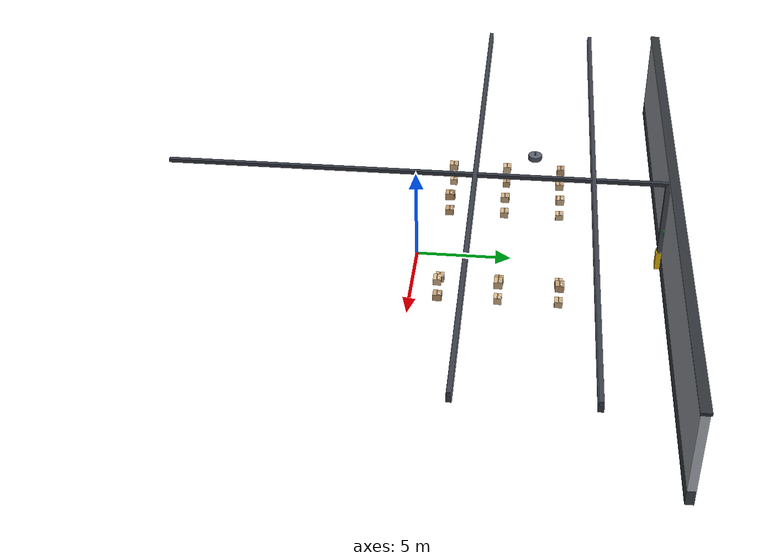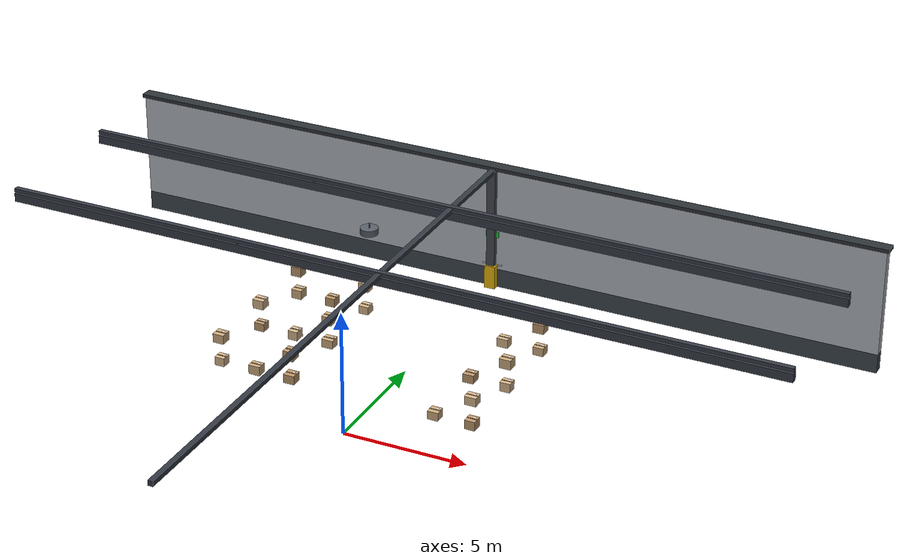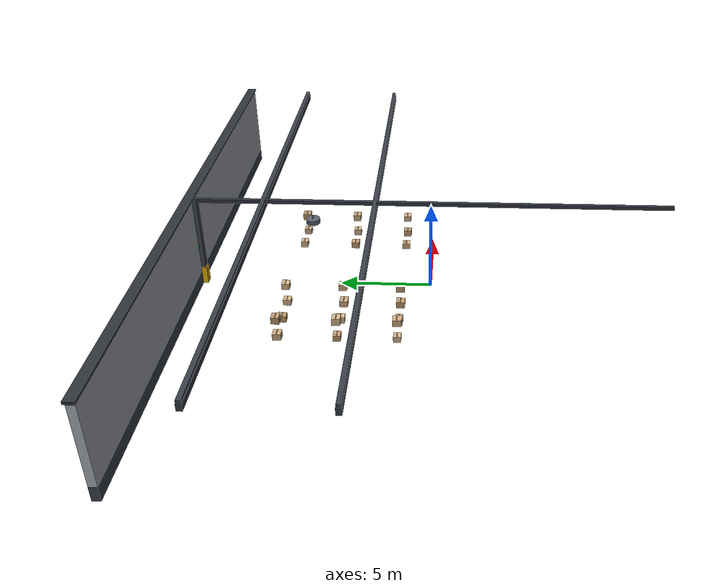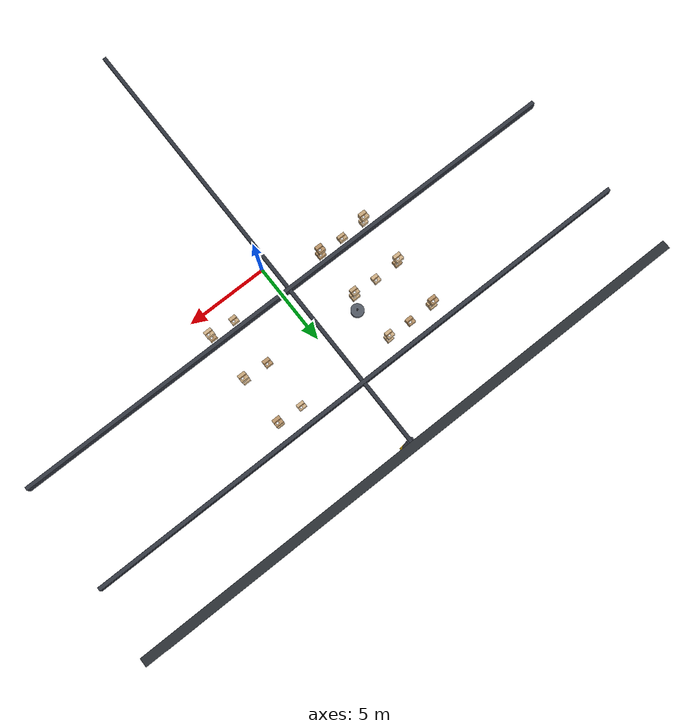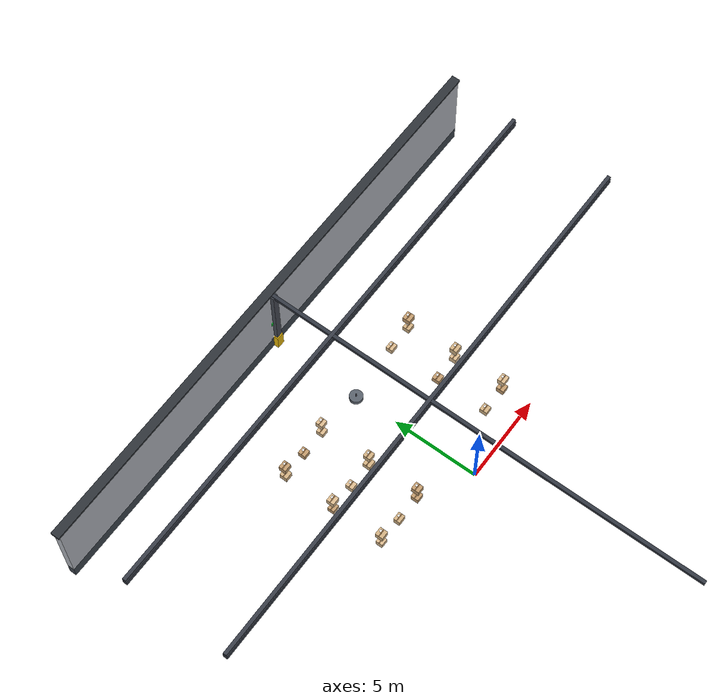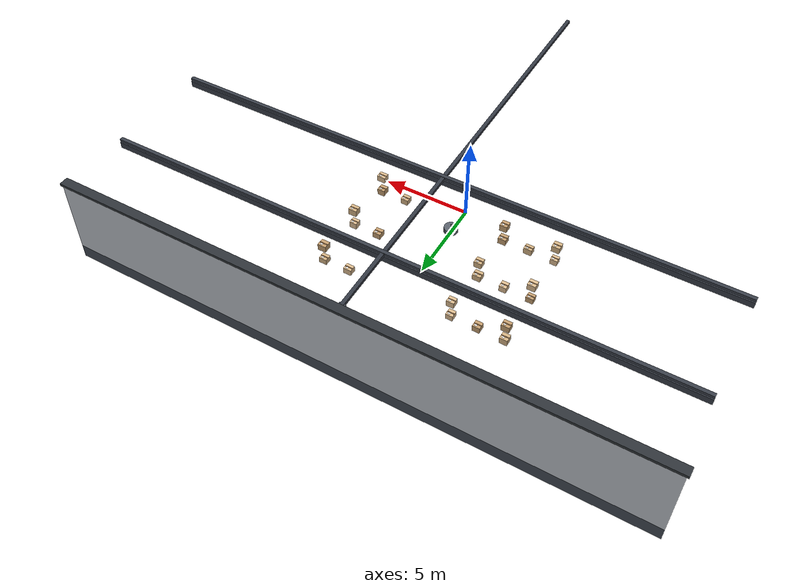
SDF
<sdf version="1.8">
 <world name="warehouse_3d">
  <model name="warehouse_architecture">
   <static>true</static>
   <link name="wall_north_base">
    <pose>0.0000 13.0000 0.4000 0.0000 0.0000 0.0000</pose>
    <collision name="wall_north_base_col">
     <geometry><box><size>32.4000 0.4000 0.8000</size></box></geometry>
    </collision>
    <visual name="wall_north_base_vis">
     <geometry><box><size>32.4000 0.4000 0.8000</size></box></geometry>
     <material>
      <ambient>0.163 0.182 0.208 1.00</ambient>
      <diffuse>0.250 0.280 0.320 1.00</diffuse>
      <specular>0.15 0.15 0.15 1.0</specular>
     </material>
    </visual>
   </link>
   <link name="wall_north_upper">
    <pose>0.0000 13.0000 3.0000 0.0000 0.0000 0.0000</pose>
    <collision name="wall_north_upper_col">
     <geometry><box><size>32.4000 0.4000 4.4000</size></box></geometry>
    </collision>
    <visual name="wall_north_upper_vis">
     <geometry><box><size>32.4000 0.4000 4.4000</size></box></geometry>
     <material>
      <ambient>0.468 0.481 0.501 1.00</ambient>
      <diffuse>0.720 0.740 0.770 1.00</diffuse>
      <specular>0.15 0.15 0.15 1.0</specular>
     </material>
    </visual>
   </link>
   <link name="wall_north_coping">
    <pose>0.0000 13.0000 5.2500 0.0000 0.0000 0.0000</pose>
    <collision name="wall_north_coping_col">
     <geometry><box><size>32.6000 0.5000 0.1500</size></box></geometry>
    </collision>
    <visual name="wall_north_coping_vis">
     <geometry><box><size>32.6000 0.5000 0.1500</size></box></geometry>
     <material>
      <ambient>0.117 0.130 0.143 1.00</ambient>
      <diffuse>0.180 0.200 0.220 1.00</diffuse>
      <specular>0.15 0.15 0.15 1.0</specular>
     </material>
    </visual>
   </link>
   <link name="window_north">
    <pose>0.0000 12.8500 4.2000 0.0000 0.0000 0.0000</pose>
    <visual name="window_north_vis">
     <geometry><box><size>28.0000 0.0500 1.0000</size></box></geometry>
     <material>
      <ambient>0.293 0.423 0.552 0.70</ambient>
      <diffuse>0.450 0.650 0.850 0.70</diffuse>
      <specular>0.15 0.15 0.15 1.0</specular>
     </material>
    </visual>
   </link>
   <link name="exit_door_north">
    <pose>0.0000 12.8500 1.1000 0.0000 0.0000 0.0000</pose>
    <collision name="exit_door_north_col">
     <geometry><box><size>1.1000 0.0500 2.2000</size></box></geometry>
    </collision>
    <visual name="exit_door_north_vis">
     <geometry><box><size>1.1000 0.0500 2.2000</size></box></geometry>
     <material>
      <ambient>0.195 0.208 0.227 1.00</ambient>
      <diffuse>0.300 0.320 0.350 1.00</diffuse>
      <specular>0.15 0.15 0.15 1.0</specular>
     </material>
    </visual>
   </link>
   <link name="exit_pushbar_north">
    <pose>0.0000 12.8000 1.0000 0.0000 0.0000 0.0000</pose>
    <collision name="exit_pushbar_north_col">
     <geometry><box><size>0.8500 0.0600 0.0600</size></box></geometry>
    </collision>
    <visual name="exit_pushbar_north_vis">
     <geometry><box><size>0.8500 0.0600 0.0600</size></box></geometry>
     <material>
      <ambient>0.520 0.520 0.552 1.00</ambient>
      <diffuse>0.800 0.800 0.850 1.00</diffuse>
      <specular>0.15 0.15 0.15 1.0</specular>
     </material>
    </visual>
   </link>
   <link name="exit_sign_north">
    <pose>0.0000 12.8000 2.3500 0.0000 0.0000 0.0000</pose>
    <visual name="exit_sign_north_vis">
     <geometry><box><size>0.5500 0.0800 0.2500</size></box></geometry>
     <material>
      <ambient>0.065 0.552 0.163 1.00</ambient>
      <diffuse>0.100 0.850 0.250 1.00</diffuse>
      <specular>0.15 0.15 0.15 1.0</specular>
      <emissive>0.100 0.800 0.200 1.0</emissive>
     </material>
    </visual>
   </link>
   <link name="col_10_base">
    <pose>0.0000 12.7500 0.5000 0.0000 0.0000 0.0000</pose>
    <collision name="col_10_base_col">
     <geometry><box><size>0.4500 0.4500 1.0000</size></box></geometry>
    </collision>
    <visual name="col_10_base_vis">
     <geometry><box><size>0.4500 0.4500 1.0000</size></box></geometry>
     <material>
      <ambient>0.617 0.488 0.033 1.00</ambient>
      <diffuse>0.950 0.750 0.050 1.00</diffuse>
      <specular>0.15 0.15 0.15 1.0</specular>
     </material>
    </visual>
   </link>
   <link name="col_10_stem">
    <pose>0.0000 12.7500 3.1000 0.0000 0.0000 0.0000</pose>
    <collision name="col_10_stem_col">
     <geometry><box><size>0.3500 0.3500 4.2000</size></box></geometry>
    </collision>
    <visual name="col_10_stem_vis">
     <geometry><box><size>0.3500 0.3500 4.2000</size></box></geometry>
     <material>
      <ambient>0.182 0.195 0.221 1.00</ambient>
      <diffuse>0.280 0.300 0.340 1.00</diffuse>
      <specular>0.15 0.15 0.15 1.0</specular>
     </material>
    </visual>
   </link>
   <link name="truss_beam_2">
    <pose>0.0000 3.0000 4.9000 0.0000 0.0000 0.0000</pose>
    <visual name="truss_beam_2_vis">
     <geometry><box><size>32.0000 0.2500 0.3500</size></box></geometry>
     <material>
      <ambient>0.143 0.156 0.182 1.00</ambient>
      <diffuse>0.220 0.240 0.280 1.00</diffuse>
      <specular>0.15 0.15 0.15 1.0</specular>
     </material>
    </visual>
   </link>
   <link name="truss_top_2">
    <pose>0.0000 3.0000 5.2000 0.0000 0.0000 0.0000</pose>
    <visual name="truss_top_2_vis">
     <geometry><box><size>32.0000 0.2000 0.1500</size></box></geometry>
     <material>
      <ambient>0.143 0.156 0.182 1.00</ambient>
      <diffuse>0.220 0.240 0.280 1.00</diffuse>
      <specular>0.15 0.15 0.15 1.0</specular>
     </material>
    </visual>
   </link>
   <link name="truss_web_2_1">
    <pose>-6.0000 3.0000 5.0500 0.0000 0.0000 0.0000</pose>
    <visual name="truss_web_2_1_vis">
     <geometry><box><size>0.1200 0.1200 0.3000</size></box></geometry>
     <material>
      <ambient>0.182 0.195 0.221 1.00</ambient>
      <diffuse>0.280 0.300 0.340 1.00</diffuse>
      <specular>0.15 0.15 0.15 1.0</specular>
     </material>
    </visual>
   </link>
   <link name="truss_web_2_2">
    <pose>0.0000 3.0000 5.0500 0.0000 0.0000 0.0000</pose>
    <visual name="truss_web_2_2_vis">
     <geometry><box><size>0.1200 0.1200 0.3000</size></box></geometry>
     <material>
      <ambient>0.182 0.195 0.221 1.00</ambient>
      <diffuse>0.280 0.300 0.340 1.00</diffuse>
      <specular>0.15 0.15 0.15 1.0</specular>
     </material>
    </visual>
   </link>
   <link name="truss_beam_3">
    <pose>0.0000 9.0000 4.9000 0.0000 0.0000 0.0000</pose>
    <visual name="truss_beam_3_vis">
     <geometry><box><size>32.0000 0.2500 0.3500</size></box></geometry>
     <material>
      <ambient>0.143 0.156 0.182 1.00</ambient>
      <diffuse>0.220 0.240 0.280 1.00</diffuse>
      <specular>0.15 0.15 0.15 1.0</specular>
     </material>
    </visual>
   </link>
   <link name="truss_top_3">
    <pose>0.0000 9.0000 5.2000 0.0000 0.0000 0.0000</pose>
    <visual name="truss_top_3_vis">
     <geometry><box><size>32.0000 0.2000 0.1500</size></box></geometry>
     <material>
      <ambient>0.143 0.156 0.182 1.00</ambient>
      <diffuse>0.220 0.240 0.280 1.00</diffuse>
      <specular>0.15 0.15 0.15 1.0</specular>
     </material>
    </visual>
   </link>
   <link name="truss_web_3_1">
    <pose>-6.0000 9.0000 5.0500 0.0000 0.0000 0.0000</pose>
    <visual name="truss_web_3_1_vis">
     <geometry><box><size>0.1200 0.1200 0.3000</size></box></geometry>
     <material>
      <ambient>0.182 0.195 0.221 1.00</ambient>
      <diffuse>0.280 0.300 0.340 1.00</diffuse>
      <specular>0.15 0.15 0.15 1.0</specular>
     </material>
    </visual>
   </link>
   <link name="truss_web_3_2">
    <pose>0.0000 9.0000 5.0500 0.0000 0.0000 0.0000</pose>
    <visual name="truss_web_3_2_vis">
     <geometry><box><size>0.1200 0.1200 0.3000</size></box></geometry>
     <material>
      <ambient>0.182 0.195 0.221 1.00</ambient>
      <diffuse>0.280 0.300 0.340 1.00</diffuse>
      <specular>0.15 0.15 0.15 1.0</specular>
     </material>
    </visual>
   </link>
   <link name="girder_1">
    <pose>0.0000 0.0000 5.1500 0.0000 0.0000 0.0000</pose>
    <visual name="girder_1_vis">
     <geometry><box><size>0.2000 25.6000 0.2000</size></box></geometry>
     <material>
      <ambient>0.130 0.143 0.169 1.00</ambient>
      <diffuse>0.200 0.220 0.260 1.00</diffuse>
      <specular>0.15 0.15 0.15 1.0</specular>
     </material>
    </visual>
   </link>
   <link name="fixture_bell_5">
    <pose>-2.0000 6.0000 5.1500 0.0000 0.0000 0.0000</pose>
    <visual name="fixture_bell_5_vis">
     <geometry><cylinder><radius>0.3500</radius><length>0.2500</length></cylinder></geometry>
     <material>
      <ambient>0.227 0.247 0.273 1.00</ambient>
      <diffuse>0.350 0.380 0.420 1.00</diffuse>
      <specular>0.2 0.2 0.2 1.0</specular>
     </material>
    </visual>
   </link>
   <link name="fixture_stem_5">
    <pose>-2.0000 6.0000 5.3500 0.0000 0.0000 0.0000</pose>
    <visual name="fixture_stem_5_vis">
     <geometry><cylinder><radius>0.0400</radius><length>0.2000</length></cylinder></geometry>
     <material>
      <ambient>0.098 0.098 0.117 1.00</ambient>
      <diffuse>0.150 0.150 0.180 1.00</diffuse>
      <specular>0.2 0.2 0.2 1.0</specular>
     </material>
    </visual>
   </link>
   <link name="fixture_lens_5">
    <pose>-2.0000 6.0000 5.0200 0.0000 0.0000 0.0000</pose>
    <visual name="fixture_lens_5_vis">
     <geometry><cylinder><radius>0.3200</radius><length>0.0400</length></cylinder></geometry>
     <material>
      <ambient>0.617 0.637 0.650 1.00</ambient>
      <diffuse>0.950 0.980 1.000 1.00</diffuse>
      <specular>0.2 0.2 0.2 1.0</specular>
      <emissive>0.850 0.880 0.950 1.0</emissive>
     </material>
    </visual>
   </link>
  </model>
  <model name="package_P027">
   <static>true</static>
   <pose>-6.00 1.50 0.82 0 0 0</pose>
   <link name="box_link">
    <collision name="box_col"><geometry><box><size>0.40 0.39 0.35</size></box></geometry></collision>
    <visual name="box_vis">
     <geometry><box><size>0.40 0.39 0.35</size></box></geometry>
     <material>
      <ambient>0.60 0.51 0.39 1.0</ambient>
      <diffuse>0.86 0.73 0.56 1.0</diffuse>
      <specular>0.08 0.08 0.08 1.0</specular>
     </material>
    </visual>
    <visual name="top_tape">
     <pose>0 0 0.1760 0 0 0</pose>
     <geometry><box><size>0.402 0.05 0.002</size></box></geometry>
     <material><ambient>0.48 0.35 0.20 1.0</ambient><diffuse>0.55 0.40 0.24 1.0</diffuse></material>
    </visual>
    <visual name="shipping_label">
     <pose>0.060 0.078 0.1770 0 0 0</pose>
     <geometry><box><size>0.14 0.10 0.002</size></box></geometry>
     <material><ambient>0.92 0.92 0.92 1.0</ambient><diffuse>0.98 0.98 0.98 1.0</diffuse></material>
    </visual>
   </link>
  </model>
  <model name="package_P028">
   <static>true</static>
   <pose>-4.50 1.50 0.82 0 0 0</pose>
   <link name="box_link">
    <collision name="box_col"><geometry><box><size>0.47 0.38 0.38</size></box></geometry></collision>
    <visual name="box_vis">
     <geometry><box><size>0.47 0.38 0.38</size></box></geometry>
     <material>
      <ambient>0.57 0.48 0.36 1.0</ambient>
      <diffuse>0.82 0.69 0.51 1.0</diffuse>
      <specular>0.08 0.08 0.08 1.0</specular>
     </material>
    </visual>
    <visual name="top_tape">
     <pose>0 0 0.1910 0 0 0</pose>
     <geometry><box><size>0.472 0.05 0.002</size></box></geometry>
     <material><ambient>0.48 0.35 0.20 1.0</ambient><diffuse>0.55 0.40 0.24 1.0</diffuse></material>
    </visual>
    <visual name="shipping_label">
     <pose>0.070 0.076 0.1920 0 0 0</pose>
     <geometry><box><size>0.14 0.10 0.002</size></box></geometry>
     <material><ambient>0.92 0.92 0.92 1.0</ambient><diffuse>0.98 0.98 0.98 1.0</diffuse></material>
    </visual>
   </link>
  </model>
  <model name="package_P029">
   <static>true</static>
   <pose>-3.00 1.50 0.82 0 0 0</pose>
   <link name="box_link">
    <collision name="box_col"><geometry><box><size>0.45 0.44 0.36</size></box></geometry></collision>
    <visual name="box_vis">
     <geometry><box><size>0.45 0.44 0.36</size></box></geometry>
     <material>
      <ambient>0.53 0.43 0.30 1.0</ambient>
      <diffuse>0.76 0.61 0.43 1.0</diffuse>
      <specular>0.08 0.08 0.08 1.0</specular>
     </material>
    </visual>
    <visual name="top_tape">
     <pose>0 0 0.1810 0 0 0</pose>
     <geometry><box><size>0.452 0.05 0.002</size></box></geometry>
     <material><ambient>0.48 0.35 0.20 1.0</ambient><diffuse>0.55 0.40 0.24 1.0</diffuse></material>
    </visual>
    <visual name="shipping_label">
     <pose>0.068 0.088 0.1820 0 0 0</pose>
     <geometry><box><size>0.14 0.10 0.002</size></box></geometry>
     <material><ambient>0.92 0.92 0.92 1.0</ambient><diffuse>0.98 0.98 0.98 1.0</diffuse></material>
    </visual>
   </link>
  </model>
  <model name="package_P031">
   <static>true</static>
   <pose>-6.00 1.50 1.82 0 0 0</pose>
   <link name="box_link">
    <collision name="box_col"><geometry><box><size>0.45 0.45 0.37</size></box></geometry></collision>
    <visual name="box_vis">
     <geometry><box><size>0.45 0.45 0.37</size></box></geometry>
     <material>
      <ambient>0.57 0.48 0.36 1.0</ambient>
      <diffuse>0.82 0.69 0.51 1.0</diffuse>
      <specular>0.08 0.08 0.08 1.0</specular>
     </material>
    </visual>
    <visual name="top_tape">
     <pose>0 0 0.1860 0 0 0</pose>
     <geometry><box><size>0.452 0.05 0.002</size></box></geometry>
     <material><ambient>0.48 0.35 0.20 1.0</ambient><diffuse>0.55 0.40 0.24 1.0</diffuse></material>
    </visual>
    <visual name="shipping_label">
     <pose>0.068 0.090 0.1870 0 0 0</pose>
     <geometry><box><size>0.14 0.10 0.002</size></box></geometry>
     <material><ambient>0.92 0.92 0.92 1.0</ambient><diffuse>0.98 0.98 0.98 1.0</diffuse></material>
    </visual>
   </link>
  </model>
  <model name="package_P032">
   <static>true</static>
   <pose>-3.00 1.50 1.82 0 0 0</pose>
   <link name="box_link">
    <collision name="box_col"><geometry><box><size>0.42 0.44 0.39</size></box></geometry></collision>
    <visual name="box_vis">
     <geometry><box><size>0.42 0.44 0.39</size></box></geometry>
     <material>
      <ambient>0.53 0.43 0.30 1.0</ambient>
      <diffuse>0.76 0.61 0.43 1.0</diffuse>
      <specular>0.08 0.08 0.08 1.0</specular>
     </material>
    </visual>
    <visual name="top_tape">
     <pose>0 0 0.1960 0 0 0</pose>
     <geometry><box><size>0.422 0.05 0.002</size></box></geometry>
     <material><ambient>0.48 0.35 0.20 1.0</ambient><diffuse>0.55 0.40 0.24 1.0</diffuse></material>
    </visual>
    <visual name="shipping_label">
     <pose>0.063 0.088 0.1970 0 0 0</pose>
     <geometry><box><size>0.14 0.10 0.002</size></box></geometry>
     <material><ambient>0.92 0.92 0.92 1.0</ambient><diffuse>0.98 0.98 0.98 1.0</diffuse></material>
    </visual>
   </link>
  </model>
  <model name="package_P035">
   <static>true</static>
   <pose>-6.00 4.50 0.82 0 0 0</pose>
   <link name="box_link">
    <collision name="box_col"><geometry><box><size>0.42 0.38 0.34</size></box></geometry></collision>
    <visual name="box_vis">
     <geometry><box><size>0.42 0.38 0.34</size></box></geometry>
     <material>
      <ambient>0.53 0.43 0.30 1.0</ambient>
      <diffuse>0.76 0.61 0.43 1.0</diffuse>
      <specular>0.08 0.08 0.08 1.0</specular>
     </material>
    </visual>
    <visual name="top_tape">
     <pose>0 0 0.1710 0 0 0</pose>
     <geometry><box><size>0.422 0.05 0.002</size></box></geometry>
     <material><ambient>0.48 0.35 0.20 1.0</ambient><diffuse>0.55 0.40 0.24 1.0</diffuse></material>
    </visual>
    <visual name="shipping_label">
     <pose>0.063 0.076 0.1720 0 0 0</pose>
     <geometry><box><size>0.14 0.10 0.002</size></box></geometry>
     <material><ambient>0.92 0.92 0.92 1.0</ambient><diffuse>0.98 0.98 0.98 1.0</diffuse></material>
    </visual>
   </link>
  </model>
  <model name="package_P036">
   <static>true</static>
   <pose>-4.50 4.50 0.82 0 0 0</pose>
   <link name="box_link">
    <collision name="box_col"><geometry><box><size>0.40 0.44 0.37</size></box></geometry></collision>
    <visual name="box_vis">
     <geometry><box><size>0.40 0.44 0.37</size></box></geometry>
     <material>
      <ambient>0.60 0.51 0.39 1.0</ambient>
      <diffuse>0.86 0.73 0.56 1.0</diffuse>
      <specular>0.08 0.08 0.08 1.0</specular>
     </material>
    </visual>
    <visual name="top_tape">
     <pose>0 0 0.1860 0 0 0</pose>
     <geometry><box><size>0.402 0.05 0.002</size></box></geometry>
     <material><ambient>0.48 0.35 0.20 1.0</ambient><diffuse>0.55 0.40 0.24 1.0</diffuse></material>
    </visual>
    <visual name="shipping_label">
     <pose>0.060 0.088 0.1870 0 0 0</pose>
     <geometry><box><size>0.14 0.10 0.002</size></box></geometry>
     <material><ambient>0.92 0.92 0.92 1.0</ambient><diffuse>0.98 0.98 0.98 1.0</diffuse></material>
    </visual>
   </link>
  </model>
  <model name="package_P037">
   <static>true</static>
   <pose>-3.00 4.50 0.82 0 0 0</pose>
   <link name="box_link">
    <collision name="box_col"><geometry><box><size>0.47 0.43 0.35</size></box></geometry></collision>
    <visual name="box_vis">
     <geometry><box><size>0.47 0.43 0.35</size></box></geometry>
     <material>
      <ambient>0.57 0.48 0.36 1.0</ambient>
      <diffuse>0.82 0.69 0.51 1.0</diffuse>
      <specular>0.08 0.08 0.08 1.0</specular>
     </material>
    </visual>
    <visual name="top_tape">
     <pose>0 0 0.1760 0 0 0</pose>
     <geometry><box><size>0.472 0.05 0.002</size></box></geometry>
     <material><ambient>0.48 0.35 0.20 1.0</ambient><diffuse>0.55 0.40 0.24 1.0</diffuse></material>
    </visual>
    <visual name="shipping_label">
     <pose>0.070 0.086 0.1770 0 0 0</pose>
     <geometry><box><size>0.14 0.10 0.002</size></box></geometry>
     <material><ambient>0.92 0.92 0.92 1.0</ambient><diffuse>0.98 0.98 0.98 1.0</diffuse></material>
    </visual>
   </link>
  </model>
  <model name="package_P039">
   <static>true</static>
   <pose>-6.00 4.50 1.82 0 0 0</pose>
   <link name="box_link">
    <collision name="box_col"><geometry><box><size>0.45 0.43 0.38</size></box></geometry></collision>
    <visual name="box_vis">
     <geometry><box><size>0.45 0.43 0.38</size></box></geometry>
     <material>
      <ambient>0.60 0.51 0.39 1.0</ambient>
      <diffuse>0.86 0.73 0.56 1.0</diffuse>
      <specular>0.08 0.08 0.08 1.0</specular>
     </material>
    </visual>
    <visual name="top_tape">
     <pose>0 0 0.1910 0 0 0</pose>
     <geometry><box><size>0.452 0.05 0.002</size></box></geometry>
     <material><ambient>0.48 0.35 0.20 1.0</ambient><diffuse>0.55 0.40 0.24 1.0</diffuse></material>
    </visual>
    <visual name="shipping_label">
     <pose>0.068 0.086 0.1920 0 0 0</pose>
     <geometry><box><size>0.14 0.10 0.002</size></box></geometry>
     <material><ambient>0.92 0.92 0.92 1.0</ambient><diffuse>0.98 0.98 0.98 1.0</diffuse></material>
    </visual>
   </link>
  </model>
  <model name="package_P040">
   <static>true</static>
   <pose>-3.00 4.50 1.82 0 0 0</pose>
   <link name="box_link">
    <collision name="box_col"><geometry><box><size>0.42 0.42 0.35</size></box></geometry></collision>
    <visual name="box_vis">
     <geometry><box><size>0.42 0.42 0.35</size></box></geometry>
     <material>
      <ambient>0.57 0.48 0.36 1.0</ambient>
      <diffuse>0.82 0.69 0.51 1.0</diffuse>
      <specular>0.08 0.08 0.08 1.0</specular>
     </material>
    </visual>
    <visual name="top_tape">
     <pose>0 0 0.1760 0 0 0</pose>
     <geometry><box><size>0.422 0.05 0.002</size></box></geometry>
     <material><ambient>0.48 0.35 0.20 1.0</ambient><diffuse>0.55 0.40 0.24 1.0</diffuse></material>
    </visual>
    <visual name="shipping_label">
     <pose>0.063 0.084 0.1770 0 0 0</pose>
     <geometry><box><size>0.14 0.10 0.002</size></box></geometry>
     <material><ambient>0.92 0.92 0.92 1.0</ambient><diffuse>0.98 0.98 0.98 1.0</diffuse></material>
    </visual>
   </link>
  </model>
  <model name="package_P043">
   <static>true</static>
   <pose>-6.00 7.50 0.82 0 0 0</pose>
   <link name="box_link">
    <collision name="box_col"><geometry><box><size>0.44 0.44 0.38</size></box></geometry></collision>
    <visual name="box_vis">
     <geometry><box><size>0.44 0.44 0.38</size></box></geometry>
     <material>
      <ambient>0.57 0.48 0.36 1.0</ambient>
      <diffuse>0.82 0.69 0.51 1.0</diffuse>
      <specular>0.08 0.08 0.08 1.0</specular>
     </material>
    </visual>
    <visual name="top_tape">
     <pose>0 0 0.1910 0 0 0</pose>
     <geometry><box><size>0.442 0.05 0.002</size></box></geometry>
     <material><ambient>0.48 0.35 0.20 1.0</ambient><diffuse>0.55 0.40 0.24 1.0</diffuse></material>
    </visual>
    <visual name="shipping_label">
     <pose>0.066 0.088 0.1920 0 0 0</pose>
     <geometry><box><size>0.14 0.10 0.002</size></box></geometry>
     <material><ambient>0.92 0.92 0.92 1.0</ambient><diffuse>0.98 0.98 0.98 1.0</diffuse></material>
    </visual>
   </link>
  </model>
  <model name="package_P044">
   <static>true</static>
   <pose>-4.50 7.50 0.82 0 0 0</pose>
   <link name="box_link">
    <collision name="box_col"><geometry><box><size>0.42 0.43 0.36</size></box></geometry></collision>
    <visual name="box_vis">
     <geometry><box><size>0.42 0.43 0.36</size></box></geometry>
     <material>
      <ambient>0.53 0.43 0.30 1.0</ambient>
      <diffuse>0.76 0.61 0.43 1.0</diffuse>
      <specular>0.08 0.08 0.08 1.0</specular>
     </material>
    </visual>
    <visual name="top_tape">
     <pose>0 0 0.1810 0 0 0</pose>
     <geometry><box><size>0.422 0.05 0.002</size></box></geometry>
     <material><ambient>0.48 0.35 0.20 1.0</ambient><diffuse>0.55 0.40 0.24 1.0</diffuse></material>
    </visual>
    <visual name="shipping_label">
     <pose>0.063 0.086 0.1820 0 0 0</pose>
     <geometry><box><size>0.14 0.10 0.002</size></box></geometry>
     <material><ambient>0.92 0.92 0.92 1.0</ambient><diffuse>0.98 0.98 0.98 1.0</diffuse></material>
    </visual>
   </link>
  </model>
  <model name="package_P045">
   <static>true</static>
   <pose>-3.00 7.50 0.82 0 0 0</pose>
   <link name="box_link">
    <collision name="box_col"><geometry><box><size>0.40 0.42 0.34</size></box></geometry></collision>
    <visual name="box_vis">
     <geometry><box><size>0.40 0.42 0.34</size></box></geometry>
     <material>
      <ambient>0.60 0.51 0.39 1.0</ambient>
      <diffuse>0.86 0.73 0.56 1.0</diffuse>
      <specular>0.08 0.08 0.08 1.0</specular>
     </material>
    </visual>
    <visual name="top_tape">
     <pose>0 0 0.1710 0 0 0</pose>
     <geometry><box><size>0.402 0.05 0.002</size></box></geometry>
     <material><ambient>0.48 0.35 0.20 1.0</ambient><diffuse>0.55 0.40 0.24 1.0</diffuse></material>
    </visual>
    <visual name="shipping_label">
     <pose>0.060 0.084 0.1720 0 0 0</pose>
     <geometry><box><size>0.14 0.10 0.002</size></box></geometry>
     <material><ambient>0.92 0.92 0.92 1.0</ambient><diffuse>0.98 0.98 0.98 1.0</diffuse></material>
    </visual>
   </link>
  </model>
  <model name="package_P047">
   <static>true</static>
   <pose>-6.00 7.50 1.82 0 0 0</pose>
   <link name="box_link">
    <collision name="box_col"><geometry><box><size>0.45 0.41 0.39</size></box></geometry></collision>
    <visual name="box_vis">
     <geometry><box><size>0.45 0.41 0.39</size></box></geometry>
     <material>
      <ambient>0.53 0.43 0.30 1.0</ambient>
      <diffuse>0.76 0.61 0.43 1.0</diffuse>
      <specular>0.08 0.08 0.08 1.0</specular>
     </material>
    </visual>
    <visual name="top_tape">
     <pose>0 0 0.1960 0 0 0</pose>
     <geometry><box><size>0.452 0.05 0.002</size></box></geometry>
     <material><ambient>0.48 0.35 0.20 1.0</ambient><diffuse>0.55 0.40 0.24 1.0</diffuse></material>
    </visual>
    <visual name="shipping_label">
     <pose>0.068 0.082 0.1970 0 0 0</pose>
     <geometry><box><size>0.14 0.10 0.002</size></box></geometry>
     <material><ambient>0.92 0.92 0.92 1.0</ambient><diffuse>0.98 0.98 0.98 1.0</diffuse></material>
    </visual>
   </link>
  </model>
  <model name="package_P048">
   <static>true</static>
   <pose>-3.00 7.50 1.82 0 0 0</pose>
   <link name="box_link">
    <collision name="box_col"><geometry><box><size>0.42 0.40 0.36</size></box></geometry></collision>
    <visual name="box_vis">
     <geometry><box><size>0.42 0.40 0.36</size></box></geometry>
     <material>
      <ambient>0.60 0.51 0.39 1.0</ambient>
      <diffuse>0.86 0.73 0.56 1.0</diffuse>
      <specular>0.08 0.08 0.08 1.0</specular>
     </material>
    </visual>
    <visual name="top_tape">
     <pose>0 0 0.1810 0 0 0</pose>
     <geometry><box><size>0.422 0.05 0.002</size></box></geometry>
     <material><ambient>0.48 0.35 0.20 1.0</ambient><diffuse>0.55 0.40 0.24 1.0</diffuse></material>
    </visual>
    <visual name="shipping_label">
     <pose>0.063 0.080 0.1820 0 0 0</pose>
     <geometry><box><size>0.14 0.10 0.002</size></box></geometry>
     <material><ambient>0.92 0.92 0.92 1.0</ambient><diffuse>0.98 0.98 0.98 1.0</diffuse></material>
    </visual>
   </link>
  </model>
  <model name="package_P070">
   <static>true</static>
   <pose>3.00 1.50 0.82 0 0 0</pose>
   <link name="box_link">
    <collision name="box_col"><geometry><box><size>0.43 0.43 0.34</size></box></geometry></collision>
    <visual name="box_vis">
     <geometry><box><size>0.43 0.43 0.34</size></box></geometry>
     <material>
      <ambient>0.57 0.48 0.36 1.0</ambient>
      <diffuse>0.82 0.69 0.51 1.0</diffuse>
      <specular>0.08 0.08 0.08 1.0</specular>
     </material>
    </visual>
    <visual name="top_tape">
     <pose>0 0 0.1710 0 0 0</pose>
     <geometry><box><size>0.432 0.05 0.002</size></box></geometry>
     <material><ambient>0.48 0.35 0.20 1.0</ambient><diffuse>0.55 0.40 0.24 1.0</diffuse></material>
    </visual>
    <visual name="shipping_label">
     <pose>0.065 0.086 0.1720 0 0 0</pose>
     <geometry><box><size>0.14 0.10 0.002</size></box></geometry>
     <material><ambient>0.92 0.92 0.92 1.0</ambient><diffuse>0.98 0.98 0.98 1.0</diffuse></material>
    </visual>
   </link>
  </model>
  <model name="package_P071">
   <static>true</static>
   <pose>4.50 1.50 0.82 0 0 0</pose>
   <link name="box_link">
    <collision name="box_col"><geometry><box><size>0.42 0.44 0.37</size></box></geometry></collision>
    <visual name="box_vis">
     <geometry><box><size>0.42 0.44 0.37</size></box></geometry>
     <material>
      <ambient>0.53 0.43 0.30 1.0</ambient>
      <diffuse>0.76 0.61 0.43 1.0</diffuse>
      <specular>0.08 0.08 0.08 1.0</specular>
     </material>
    </visual>
    <visual name="top_tape">
     <pose>0 0 0.1860 0 0 0</pose>
     <geometry><box><size>0.422 0.05 0.002</size></box></geometry>
     <material><ambient>0.48 0.35 0.20 1.0</ambient><diffuse>0.55 0.40 0.24 1.0</diffuse></material>
    </visual>
    <visual name="shipping_label">
     <pose>0.063 0.088 0.1870 0 0 0</pose>
     <geometry><box><size>0.14 0.10 0.002</size></box></geometry>
     <material><ambient>0.92 0.92 0.92 1.0</ambient><diffuse>0.98 0.98 0.98 1.0</diffuse></material>
    </visual>
   </link>
  </model>
  <model name="package_P075">
   <static>true</static>
   <pose>4.50 1.50 1.82 0 0 0</pose>
   <link name="box_link">
    <collision name="box_col"><geometry><box><size>0.47 0.40 0.35</size></box></geometry></collision>
    <visual name="box_vis">
     <geometry><box><size>0.47 0.40 0.35</size></box></geometry>
     <material>
      <ambient>0.60 0.51 0.39 1.0</ambient>
      <diffuse>0.86 0.73 0.56 1.0</diffuse>
      <specular>0.08 0.08 0.08 1.0</specular>
     </material>
    </visual>
    <visual name="top_tape">
     <pose>0 0 0.1760 0 0 0</pose>
     <geometry><box><size>0.472 0.05 0.002</size></box></geometry>
     <material><ambient>0.48 0.35 0.20 1.0</ambient><diffuse>0.55 0.40 0.24 1.0</diffuse></material>
    </visual>
    <visual name="shipping_label">
     <pose>0.070 0.080 0.1770 0 0 0</pose>
     <geometry><box><size>0.14 0.10 0.002</size></box></geometry>
     <material><ambient>0.92 0.92 0.92 1.0</ambient><diffuse>0.98 0.98 0.98 1.0</diffuse></material>
    </visual>
   </link>
  </model>
  <model name="package_P077">
   <static>true</static>
   <pose>3.00 4.50 0.82 0 0 0</pose>
   <link name="box_link">
    <collision name="box_col"><geometry><box><size>0.44 0.44 0.35</size></box></geometry></collision>
    <visual name="box_vis">
     <geometry><box><size>0.44 0.44 0.35</size></box></geometry>
     <material>
      <ambient>0.53 0.43 0.30 1.0</ambient>
      <diffuse>0.76 0.61 0.43 1.0</diffuse>
      <specular>0.08 0.08 0.08 1.0</specular>
     </material>
    </visual>
    <visual name="top_tape">
     <pose>0 0 0.1760 0 0 0</pose>
     <geometry><box><size>0.442 0.05 0.002</size></box></geometry>
     <material><ambient>0.48 0.35 0.20 1.0</ambient><diffuse>0.55 0.40 0.24 1.0</diffuse></material>
    </visual>
    <visual name="shipping_label">
     <pose>0.066 0.088 0.1770 0 0 0</pose>
     <geometry><box><size>0.14 0.10 0.002</size></box></geometry>
     <material><ambient>0.92 0.92 0.92 1.0</ambient><diffuse>0.98 0.98 0.98 1.0</diffuse></material>
    </visual>
   </link>
  </model>
  <model name="package_P078">
   <static>true</static>
   <pose>4.50 4.50 0.82 0 0 0</pose>
   <link name="box_link">
    <collision name="box_col"><geometry><box><size>0.43 0.39 0.38</size></box></geometry></collision>
    <visual name="box_vis">
     <geometry><box><size>0.43 0.39 0.38</size></box></geometry>
     <material>
      <ambient>0.60 0.51 0.39 1.0</ambient>
      <diffuse>0.86 0.73 0.56 1.0</diffuse>
      <specular>0.08 0.08 0.08 1.0</specular>
     </material>
    </visual>
    <visual name="top_tape">
     <pose>0 0 0.1910 0 0 0</pose>
     <geometry><box><size>0.432 0.05 0.002</size></box></geometry>
     <material><ambient>0.48 0.35 0.20 1.0</ambient><diffuse>0.55 0.40 0.24 1.0</diffuse></material>
    </visual>
    <visual name="shipping_label">
     <pose>0.065 0.078 0.1920 0 0 0</pose>
     <geometry><box><size>0.14 0.10 0.002</size></box></geometry>
     <material><ambient>0.92 0.92 0.92 1.0</ambient><diffuse>0.98 0.98 0.98 1.0</diffuse></material>
    </visual>
   </link>
  </model>
  <model name="package_P082">
   <static>true</static>
   <pose>4.50 4.50 1.82 0 0 0</pose>
   <link name="box_link">
    <collision name="box_col"><geometry><box><size>0.47 0.42 0.39</size></box></geometry></collision>
    <visual name="box_vis">
     <geometry><box><size>0.47 0.42 0.39</size></box></geometry>
     <material>
      <ambient>0.57 0.48 0.36 1.0</ambient>
      <diffuse>0.82 0.69 0.51 1.0</diffuse>
      <specular>0.08 0.08 0.08 1.0</specular>
     </material>
    </visual>
    <visual name="top_tape">
     <pose>0 0 0.1960 0 0 0</pose>
     <geometry><box><size>0.472 0.05 0.002</size></box></geometry>
     <material><ambient>0.48 0.35 0.20 1.0</ambient><diffuse>0.55 0.40 0.24 1.0</diffuse></material>
    </visual>
    <visual name="shipping_label">
     <pose>0.070 0.084 0.1970 0 0 0</pose>
     <geometry><box><size>0.14 0.10 0.002</size></box></geometry>
     <material><ambient>0.92 0.92 0.92 1.0</ambient><diffuse>0.98 0.98 0.98 1.0</diffuse></material>
    </visual>
   </link>
  </model>
  <model name="package_P084">
   <static>true</static>
   <pose>3.00 7.50 0.82 0 0 0</pose>
   <link name="box_link">
    <collision name="box_col"><geometry><box><size>0.45 0.39 0.36</size></box></geometry></collision>
    <visual name="box_vis">
     <geometry><box><size>0.45 0.39 0.36</size></box></geometry>
     <material>
      <ambient>0.60 0.51 0.39 1.0</ambient>
      <diffuse>0.86 0.73 0.56 1.0</diffuse>
      <specular>0.08 0.08 0.08 1.0</specular>
     </material>
    </visual>
    <visual name="top_tape">
     <pose>0 0 0.1810 0 0 0</pose>
     <geometry><box><size>0.452 0.05 0.002</size></box></geometry>
     <material><ambient>0.48 0.35 0.20 1.0</ambient><diffuse>0.55 0.40 0.24 1.0</diffuse></material>
    </visual>
    <visual name="shipping_label">
     <pose>0.068 0.078 0.1820 0 0 0</pose>
     <geometry><box><size>0.14 0.10 0.002</size></box></geometry>
     <material><ambient>0.92 0.92 0.92 1.0</ambient><diffuse>0.98 0.98 0.98 1.0</diffuse></material>
    </visual>
   </link>
  </model>
  <model name="package_P085">
   <static>true</static>
   <pose>4.50 7.50 0.82 0 0 0</pose>
   <link name="box_link">
    <collision name="box_col"><geometry><box><size>0.44 0.40 0.34</size></box></geometry></collision>
    <visual name="box_vis">
     <geometry><box><size>0.44 0.40 0.34</size></box></geometry>
     <material>
      <ambient>0.57 0.48 0.36 1.0</ambient>
      <diffuse>0.82 0.69 0.51 1.0</diffuse>
      <specular>0.08 0.08 0.08 1.0</specular>
     </material>
    </visual>
    <visual name="top_tape">
     <pose>0 0 0.1710 0 0 0</pose>
     <geometry><box><size>0.442 0.05 0.002</size></box></geometry>
     <material><ambient>0.48 0.35 0.20 1.0</ambient><diffuse>0.55 0.40 0.24 1.0</diffuse></material>
    </visual>
    <visual name="shipping_label">
     <pose>0.066 0.080 0.1720 0 0 0</pose>
     <geometry><box><size>0.14 0.10 0.002</size></box></geometry>
     <material><ambient>0.92 0.92 0.92 1.0</ambient><diffuse>0.98 0.98 0.98 1.0</diffuse></material>
    </visual>
   </link>
  </model>
  <model name="package_P089">
   <static>true</static>
   <pose>4.50 7.50 1.82 0 0 0</pose>
   <link name="box_link">
    <collision name="box_col"><geometry><box><size>0.47 0.44 0.38</size></box></geometry></collision>
    <visual name="box_vis">
     <geometry><box><size>0.47 0.44 0.38</size></box></geometry>
     <material>
      <ambient>0.53 0.43 0.30 1.0</ambient>
      <diffuse>0.76 0.61 0.43 1.0</diffuse>
      <specular>0.08 0.08 0.08 1.0</specular>
     </material>
    </visual>
    <visual name="top_tape">
     <pose>0 0 0.1910 0 0 0</pose>
     <geometry><box><size>0.472 0.05 0.002</size></box></geometry>
     <material><ambient>0.48 0.35 0.20 1.0</ambient><diffuse>0.55 0.40 0.24 1.0</diffuse></material>
    </visual>
    <visual name="shipping_label">
     <pose>0.070 0.088 0.1920 0 0 0</pose>
     <geometry><box><size>0.14 0.10 0.002</size></box></geometry>
     <material><ambient>0.92 0.92 0.92 1.0</ambient><diffuse>0.98 0.98 0.98 1.0</diffuse></material>
    </visual>
   </link>
  </model>
 </world>
</sdf>
